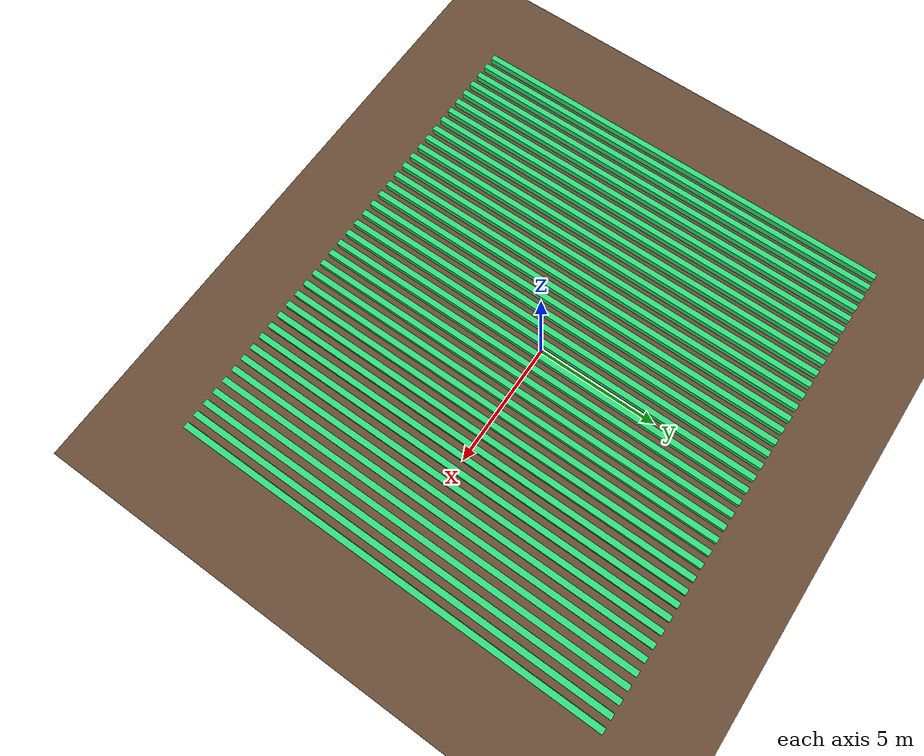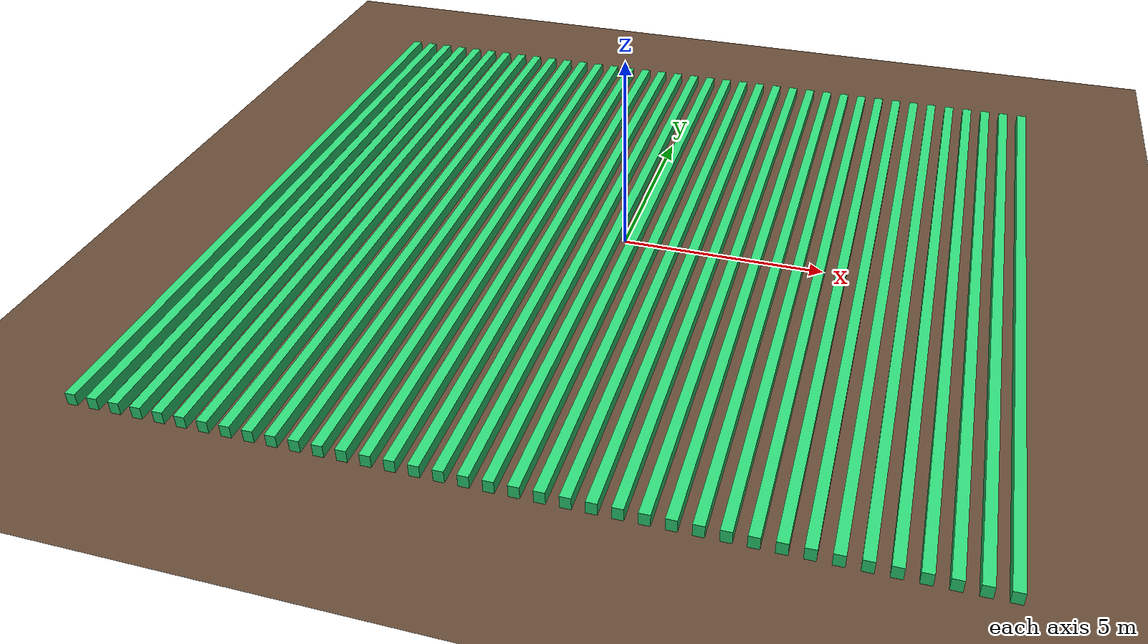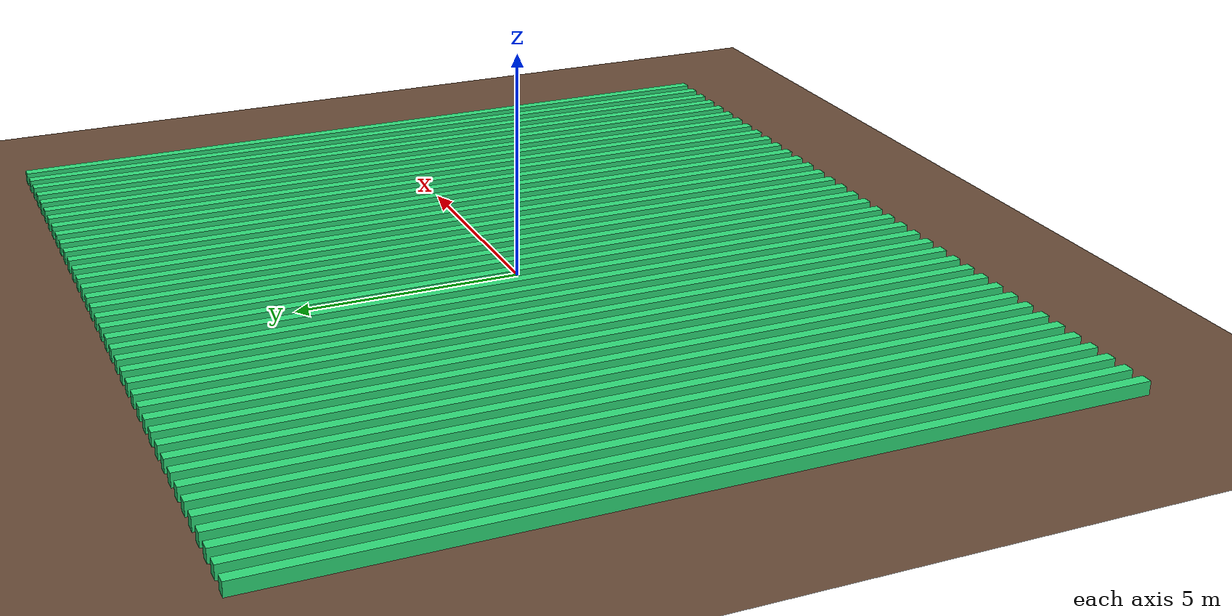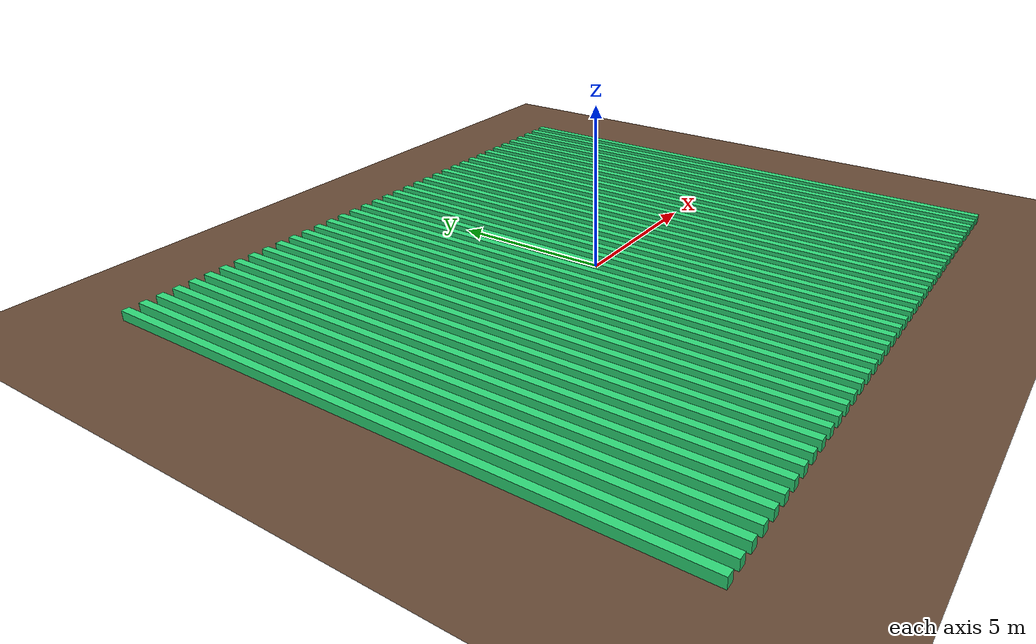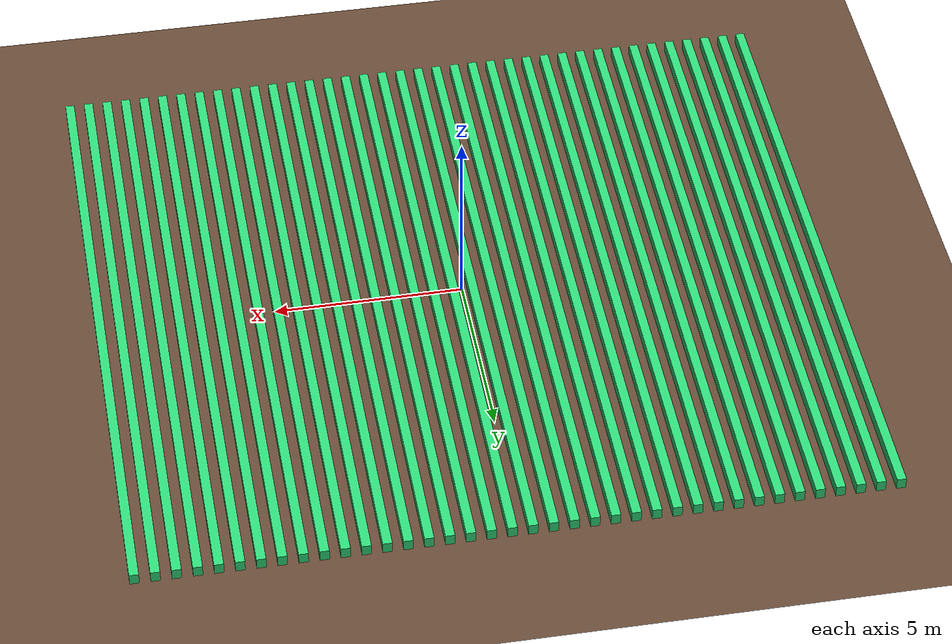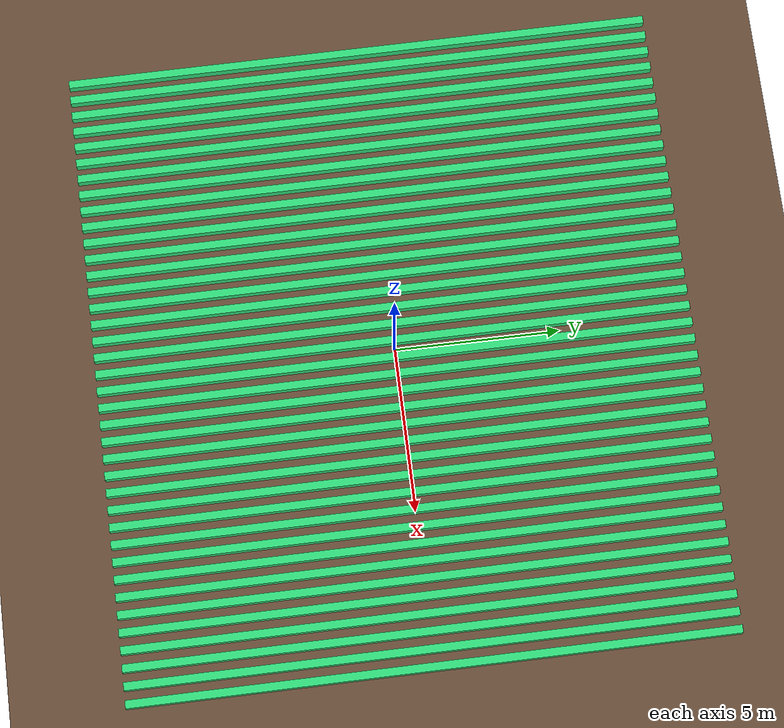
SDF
<sdf version="1.6">
 <world name="small_field">
  <light name="sun" type="directional">
   <pose>0 0 10 0 0 0</pose>
   <diffuse>0.8 0.8 0.8 1</diffuse>
   <specular>0.2 0.2 0.2 1</specular>
   <attenuation>
    <range>1000</range>
    <constant>0.9</constant>
    <linear>0.01</linear>
    <quadratic>0.001</quadratic>
   </attenuation>
   <direction>-0.5 0.1 -0.9</direction>
  </light>
  <gravity>0 0 -9.8</gravity>
  <magnetic_field>6e-06 2.3e-05 -4.2e-05</magnetic_field>
  <atmosphere type="adiabatic"/>
  <physics name="default_physics" default="0" type="ode">
   <max_step_size>0.001</max_step_size>
   <real_time_factor>1</real_time_factor>
   <real_time_update_rate>1000</real_time_update_rate>
  </physics>
  <scene><ambient>0.4 0.4 0.4 1</ambient><background>0.7 0.7 0.7 1</background><shadows>1</shadows></scene>
  <spherical_coordinates>
   <surface_model>EARTH_WGS84</surface_model>
   <latitude_deg>0</latitude_deg>
   <longitude_deg>0</longitude_deg>
   <elevation>0</elevation>
   <heading_deg>0</heading_deg>
  </spherical_coordinates>
  <model name="ground_plane">
   <static>1</static>
   <link name="ground_plane">
    <collision name="collision">
     <geometry><plane><normal>0 0 1</normal><size>20 30</size></plane></geometry>
     <surface><friction><ode><mu>100</mu><mu2>50</mu2></ode></friction></surface>
    </collision>
    <visual name="visual">
     <cast_shadows>0</cast_shadows>
     <geometry><plane><normal>0 0 1</normal><size>20 30</size></plane></geometry>
     <material>
      <ambient>0.40 0.29 0.21 1.00</ambient>
      <diffuse>0.40 0.29 0.21 1.00</diffuse>
      <specular>0.01 0.01 0.01 1</specular>
      <emissive>0 0 0 1</emissive>
     </material>
    </visual>
   </link>
  </model>
  <model name="crop1">
   <pose>-9.62 0.00 0.15 0.00 0.00 0.00</pose>
   <link name="crop_line">
    <visual name="visual">
     <geometry><box><size>0.24 18.00 0.30</size></box></geometry>
     <material>
      <ambient>0.13 0.60 0.33 1.00</ambient>
      <diffuse>0.18 0.85 0.47 1.00</diffuse>
      <specular>0.01 0.01 0.01 1</specular>
      <emissive>0 0 0 1</emissive>
     </material>
    </visual>
    <collision name="collision">
     <geometry><box><size>0.24 18.00 0.30</size></box></geometry>
     <surface><contact><collide_without_contact>true</collide_without_contact></contact></surface>
    </collision>
   </link>
   <static>1</static>
  </model>
  <model name="crop2">
   <pose>-9.10 0.00 0.15 0.00 0.00 0.00</pose>
   <link name="crop_line">
    <visual name="visual">
     <geometry><box><size>0.24 18.00 0.30</size></box></geometry>
     <material>
      <ambient>0.13 0.60 0.33 1.00</ambient>
      <diffuse>0.18 0.85 0.47 1.00</diffuse>
      <specular>0.01 0.01 0.01 1</specular>
      <emissive>0 0 0 1</emissive>
     </material>
    </visual>
    <collision name="collision">
     <geometry><box><size>0.24 18.00 0.30</size></box></geometry>
     <surface><contact><collide_without_contact>true</collide_without_contact></contact></surface>
    </collision>
   </link>
   <static>1</static>
  </model>
  <model name="crop3">
   <pose>-8.58 0.00 0.15 0.00 0.00 0.00</pose>
   <link name="crop_line">
    <visual name="visual">
     <geometry><box><size>0.24 18.00 0.30</size></box></geometry>
     <material>
      <ambient>0.13 0.60 0.33 1.00</ambient>
      <diffuse>0.18 0.85 0.47 1.00</diffuse>
      <specular>0.01 0.01 0.01 1</specular>
      <emissive>0 0 0 1</emissive>
     </material>
    </visual>
    <collision name="collision">
     <geometry><box><size>0.24 18.00 0.30</size></box></geometry>
     <surface><contact><collide_without_contact>true</collide_without_contact></contact></surface>
    </collision>
   </link>
   <static>1</static>
  </model>
  <model name="crop4">
   <pose>-8.06 0.00 0.15 0.00 0.00 0.00</pose>
   <link name="crop_line">
    <visual name="visual">
     <geometry><box><size>0.24 18.00 0.30</size></box></geometry>
     <material>
      <ambient>0.13 0.60 0.33 1.00</ambient>
      <diffuse>0.18 0.85 0.47 1.00</diffuse>
      <specular>0.01 0.01 0.01 1</specular>
      <emissive>0 0 0 1</emissive>
     </material>
    </visual>
    <collision name="collision">
     <geometry><box><size>0.24 18.00 0.30</size></box></geometry>
     <surface><contact><collide_without_contact>true</collide_without_contact></contact></surface>
    </collision>
   </link>
   <static>1</static>
  </model>
  <model name="crop5">
   <pose>-7.54 0.00 0.15 0.00 0.00 0.00</pose>
   <link name="crop_line">
    <visual name="visual">
     <geometry><box><size>0.24 18.00 0.30</size></box></geometry>
     <material>
      <ambient>0.13 0.60 0.33 1.00</ambient>
      <diffuse>0.18 0.85 0.47 1.00</diffuse>
      <specular>0.01 0.01 0.01 1</specular>
      <emissive>0 0 0 1</emissive>
     </material>
    </visual>
    <collision name="collision">
     <geometry><box><size>0.24 18.00 0.30</size></box></geometry>
     <surface><contact><collide_without_contact>true</collide_without_contact></contact></surface>
    </collision>
   </link>
   <static>1</static>
  </model>
  <model name="crop6">
   <pose>-7.02 0.00 0.15 0.00 0.00 0.00</pose>
   <link name="crop_line">
    <visual name="visual">
     <geometry><box><size>0.24 18.00 0.30</size></box></geometry>
     <material>
      <ambient>0.13 0.60 0.33 1.00</ambient>
      <diffuse>0.18 0.85 0.47 1.00</diffuse>
      <specular>0.01 0.01 0.01 1</specular>
      <emissive>0 0 0 1</emissive>
     </material>
    </visual>
    <collision name="collision">
     <geometry><box><size>0.24 18.00 0.30</size></box></geometry>
     <surface><contact><collide_without_contact>true</collide_without_contact></contact></surface>
    </collision>
   </link>
   <static>1</static>
  </model>
  <model name="crop7">
   <pose>-6.50 0.00 0.15 0.00 0.00 0.00</pose>
   <link name="crop_line">
    <visual name="visual">
     <geometry><box><size>0.24 18.00 0.30</size></box></geometry>
     <material>
      <ambient>0.13 0.60 0.33 1.00</ambient>
      <diffuse>0.18 0.85 0.47 1.00</diffuse>
      <specular>0.01 0.01 0.01 1</specular>
      <emissive>0 0 0 1</emissive>
     </material>
    </visual>
    <collision name="collision">
     <geometry><box><size>0.24 18.00 0.30</size></box></geometry>
     <surface><contact><collide_without_contact>true</collide_without_contact></contact></surface>
    </collision>
   </link>
   <static>1</static>
  </model>
  <model name="crop8">
   <pose>-5.98 0.00 0.15 0.00 0.00 0.00</pose>
   <link name="crop_line">
    <visual name="visual">
     <geometry><box><size>0.24 18.00 0.30</size></box></geometry>
     <material>
      <ambient>0.13 0.60 0.33 1.00</ambient>
      <diffuse>0.18 0.85 0.47 1.00</diffuse>
      <specular>0.01 0.01 0.01 1</specular>
      <emissive>0 0 0 1</emissive>
     </material>
    </visual>
    <collision name="collision">
     <geometry><box><size>0.24 18.00 0.30</size></box></geometry>
     <surface><contact><collide_without_contact>true</collide_without_contact></contact></surface>
    </collision>
   </link>
   <static>1</static>
  </model>
  <model name="crop9">
   <pose>-5.46 0.00 0.15 0.00 0.00 0.00</pose>
   <link name="crop_line">
    <visual name="visual">
     <geometry><box><size>0.24 18.00 0.30</size></box></geometry>
     <material>
      <ambient>0.13 0.60 0.33 1.00</ambient>
      <diffuse>0.18 0.85 0.47 1.00</diffuse>
      <specular>0.01 0.01 0.01 1</specular>
      <emissive>0 0 0 1</emissive>
     </material>
    </visual>
    <collision name="collision">
     <geometry><box><size>0.24 18.00 0.30</size></box></geometry>
     <surface><contact><collide_without_contact>true</collide_without_contact></contact></surface>
    </collision>
   </link>
   <static>1</static>
  </model>
  <model name="crop10">
   <pose>-4.94 0.00 0.15 0.00 0.00 0.00</pose>
   <link name="crop_line">
    <visual name="visual">
     <geometry><box><size>0.24 18.00 0.30</size></box></geometry>
     <material>
      <ambient>0.13 0.60 0.33 1.00</ambient>
      <diffuse>0.18 0.85 0.47 1.00</diffuse>
      <specular>0.01 0.01 0.01 1</specular>
      <emissive>0 0 0 1</emissive>
     </material>
    </visual>
    <collision name="collision">
     <geometry><box><size>0.24 18.00 0.30</size></box></geometry>
     <surface><contact><collide_without_contact>true</collide_without_contact></contact></surface>
    </collision>
   </link>
   <static>1</static>
  </model>
  <model name="crop11">
   <pose>-4.42 0.00 0.15 0.00 0.00 0.00</pose>
   <link name="crop_line">
    <visual name="visual">
     <geometry><box><size>0.24 18.00 0.30</size></box></geometry>
     <material>
      <ambient>0.13 0.60 0.33 1.00</ambient>
      <diffuse>0.18 0.85 0.47 1.00</diffuse>
      <specular>0.01 0.01 0.01 1</specular>
      <emissive>0 0 0 1</emissive>
     </material>
    </visual>
    <collision name="collision">
     <geometry><box><size>0.24 18.00 0.30</size></box></geometry>
     <surface><contact><collide_without_contact>true</collide_without_contact></contact></surface>
    </collision>
   </link>
   <static>1</static>
  </model>
  <model name="crop12">
   <pose>-3.90 0.00 0.15 0.00 0.00 0.00</pose>
   <link name="crop_line">
    <visual name="visual">
     <geometry><box><size>0.24 18.00 0.30</size></box></geometry>
     <material>
      <ambient>0.13 0.60 0.33 1.00</ambient>
      <diffuse>0.18 0.85 0.47 1.00</diffuse>
      <specular>0.01 0.01 0.01 1</specular>
      <emissive>0 0 0 1</emissive>
     </material>
    </visual>
    <collision name="collision">
     <geometry><box><size>0.24 18.00 0.30</size></box></geometry>
     <surface><contact><collide_without_contact>true</collide_without_contact></contact></surface>
    </collision>
   </link>
   <static>1</static>
  </model>
  <model name="crop13">
   <pose>-3.38 0.00 0.15 0.00 0.00 0.00</pose>
   <link name="crop_line">
    <visual name="visual">
     <geometry><box><size>0.24 18.00 0.30</size></box></geometry>
     <material>
      <ambient>0.13 0.60 0.33 1.00</ambient>
      <diffuse>0.18 0.85 0.47 1.00</diffuse>
      <specular>0.01 0.01 0.01 1</specular>
      <emissive>0 0 0 1</emissive>
     </material>
    </visual>
    <collision name="collision">
     <geometry><box><size>0.24 18.00 0.30</size></box></geometry>
     <surface><contact><collide_without_contact>true</collide_without_contact></contact></surface>
    </collision>
   </link>
   <static>1</static>
  </model>
  <model name="crop14">
   <pose>-2.86 0.00 0.15 0.00 0.00 0.00</pose>
   <link name="crop_line">
    <visual name="visual">
     <geometry><box><size>0.24 18.00 0.30</size></box></geometry>
     <material>
      <ambient>0.13 0.60 0.33 1.00</ambient>
      <diffuse>0.18 0.85 0.47 1.00</diffuse>
      <specular>0.01 0.01 0.01 1</specular>
      <emissive>0 0 0 1</emissive>
     </material>
    </visual>
    <collision name="collision">
     <geometry><box><size>0.24 18.00 0.30</size></box></geometry>
     <surface><contact><collide_without_contact>true</collide_without_contact></contact></surface>
    </collision>
   </link>
   <static>1</static>
  </model>
  <model name="crop15">
   <pose>-2.34 0.00 0.15 0.00 0.00 0.00</pose>
   <link name="crop_line">
    <visual name="visual">
     <geometry><box><size>0.24 18.00 0.30</size></box></geometry>
     <material>
      <ambient>0.13 0.60 0.33 1.00</ambient>
      <diffuse>0.18 0.85 0.47 1.00</diffuse>
      <specular>0.01 0.01 0.01 1</specular>
      <emissive>0 0 0 1</emissive>
     </material>
    </visual>
    <collision name="collision">
     <geometry><box><size>0.24 18.00 0.30</size></box></geometry>
     <surface><contact><collide_without_contact>true</collide_without_contact></contact></surface>
    </collision>
   </link>
   <static>1</static>
  </model>
  <model name="crop16">
   <pose>-1.82 0.00 0.15 0.00 0.00 0.00</pose>
   <link name="crop_line">
    <visual name="visual">
     <geometry><box><size>0.24 18.00 0.30</size></box></geometry>
     <material>
      <ambient>0.13 0.60 0.33 1.00</ambient>
      <diffuse>0.18 0.85 0.47 1.00</diffuse>
      <specular>0.01 0.01 0.01 1</specular>
      <emissive>0 0 0 1</emissive>
     </material>
    </visual>
    <collision name="collision">
     <geometry><box><size>0.24 18.00 0.30</size></box></geometry>
     <surface><contact><collide_without_contact>true</collide_without_contact></contact></surface>
    </collision>
   </link>
   <static>1</static>
  </model>
  <model name="crop17">
   <pose>-1.30 0.00 0.15 0.00 0.00 0.00</pose>
   <link name="crop_line">
    <visual name="visual">
     <geometry><box><size>0.24 18.00 0.30</size></box></geometry>
     <material>
      <ambient>0.13 0.60 0.33 1.00</ambient>
      <diffuse>0.18 0.85 0.47 1.00</diffuse>
      <specular>0.01 0.01 0.01 1</specular>
      <emissive>0 0 0 1</emissive>
     </material>
    </visual>
    <collision name="collision">
     <geometry><box><size>0.24 18.00 0.30</size></box></geometry>
     <surface><contact><collide_without_contact>true</collide_without_contact></contact></surface>
    </collision>
   </link>
   <static>1</static>
  </model>
  <model name="crop18">
   <pose>-0.78 0.00 0.15 0.00 0.00 0.00</pose>
   <link name="crop_line">
    <visual name="visual">
     <geometry><box><size>0.24 18.00 0.30</size></box></geometry>
     <material>
      <ambient>0.13 0.60 0.33 1.00</ambient>
      <diffuse>0.18 0.85 0.47 1.00</diffuse>
      <specular>0.01 0.01 0.01 1</specular>
      <emissive>0 0 0 1</emissive>
     </material>
    </visual>
    <collision name="collision">
     <geometry><box><size>0.24 18.00 0.30</size></box></geometry>
     <surface><contact><collide_without_contact>true</collide_without_contact></contact></surface>
    </collision>
   </link>
   <static>1</static>
  </model>
  <model name="crop19">
   <pose>-0.26 0.00 0.15 0.00 0.00 0.00</pose>
   <link name="crop_line">
    <visual name="visual">
     <geometry><box><size>0.24 18.00 0.30</size></box></geometry>
     <material>
      <ambient>0.13 0.60 0.33 1.00</ambient>
      <diffuse>0.18 0.85 0.47 1.00</diffuse>
      <specular>0.01 0.01 0.01 1</specular>
      <emissive>0 0 0 1</emissive>
     </material>
    </visual>
    <collision name="collision">
     <geometry><box><size>0.24 18.00 0.30</size></box></geometry>
     <surface><contact><collide_without_contact>true</collide_without_contact></contact></surface>
    </collision>
   </link>
   <static>1</static>
  </model>
  <model name="crop20">
   <pose>0.26 0.00 0.15 0.00 0.00 0.00</pose>
   <link name="crop_line">
    <visual name="visual">
     <geometry><box><size>0.24 18.00 0.30</size></box></geometry>
     <material>
      <ambient>0.13 0.60 0.33 1.00</ambient>
      <diffuse>0.18 0.85 0.47 1.00</diffuse>
      <specular>0.01 0.01 0.01 1</specular>
      <emissive>0 0 0 1</emissive>
     </material>
    </visual>
    <collision name="collision">
     <geometry><box><size>0.24 18.00 0.30</size></box></geometry>
     <surface><contact><collide_without_contact>true</collide_without_contact></contact></surface>
    </collision>
   </link>
   <static>1</static>
  </model>
  <model name="crop21">
   <pose>0.78 0.00 0.15 0.00 0.00 0.00</pose>
   <link name="crop_line">
    <visual name="visual">
     <geometry><box><size>0.24 18.00 0.30</size></box></geometry>
     <material>
      <ambient>0.13 0.60 0.33 1.00</ambient>
      <diffuse>0.18 0.85 0.47 1.00</diffuse>
      <specular>0.01 0.01 0.01 1</specular>
      <emissive>0 0 0 1</emissive>
     </material>
    </visual>
    <collision name="collision">
     <geometry><box><size>0.24 18.00 0.30</size></box></geometry>
     <surface><contact><collide_without_contact>true</collide_without_contact></contact></surface>
    </collision>
   </link>
   <static>1</static>
  </model>
  <model name="crop22">
   <pose>1.30 0.00 0.15 0.00 0.00 0.00</pose>
   <link name="crop_line">
    <visual name="visual">
     <geometry><box><size>0.24 18.00 0.30</size></box></geometry>
     <material>
      <ambient>0.13 0.60 0.33 1.00</ambient>
      <diffuse>0.18 0.85 0.47 1.00</diffuse>
      <specular>0.01 0.01 0.01 1</specular>
      <emissive>0 0 0 1</emissive>
     </material>
    </visual>
    <collision name="collision">
     <geometry><box><size>0.24 18.00 0.30</size></box></geometry>
     <surface><contact><collide_without_contact>true</collide_without_contact></contact></surface>
    </collision>
   </link>
   <static>1</static>
  </model>
  <model name="crop23">
   <pose>1.82 0.00 0.15 0.00 0.00 0.00</pose>
   <link name="crop_line">
    <visual name="visual">
     <geometry><box><size>0.24 18.00 0.30</size></box></geometry>
     <material>
      <ambient>0.13 0.60 0.33 1.00</ambient>
      <diffuse>0.18 0.85 0.47 1.00</diffuse>
      <specular>0.01 0.01 0.01 1</specular>
      <emissive>0 0 0 1</emissive>
     </material>
    </visual>
    <collision name="collision">
     <geometry><box><size>0.24 18.00 0.30</size></box></geometry>
     <surface><contact><collide_without_contact>true</collide_without_contact></contact></surface>
    </collision>
   </link>
   <static>1</static>
  </model>
  <model name="crop24">
   <pose>2.34 0.00 0.15 0.00 0.00 0.00</pose>
   <link name="crop_line">
    <visual name="visual">
     <geometry><box><size>0.24 18.00 0.30</size></box></geometry>
     <material>
      <ambient>0.13 0.60 0.33 1.00</ambient>
      <diffuse>0.18 0.85 0.47 1.00</diffuse>
      <specular>0.01 0.01 0.01 1</specular>
      <emissive>0 0 0 1</emissive>
     </material>
    </visual>
    <collision name="collision">
     <geometry><box><size>0.24 18.00 0.30</size></box></geometry>
     <surface><contact><collide_without_contact>true</collide_without_contact></contact></surface>
    </collision>
   </link>
   <static>1</static>
  </model>
  <model name="crop25">
   <pose>2.86 0.00 0.15 0.00 0.00 0.00</pose>
   <link name="crop_line">
    <visual name="visual">
     <geometry><box><size>0.24 18.00 0.30</size></box></geometry>
     <material>
      <ambient>0.13 0.60 0.33 1.00</ambient>
      <diffuse>0.18 0.85 0.47 1.00</diffuse>
      <specular>0.01 0.01 0.01 1</specular>
      <emissive>0 0 0 1</emissive>
     </material>
    </visual>
    <collision name="collision">
     <geometry><box><size>0.24 18.00 0.30</size></box></geometry>
     <surface><contact><collide_without_contact>true</collide_without_contact></contact></surface>
    </collision>
   </link>
   <static>1</static>
  </model>
  <model name="crop26">
   <pose>3.38 0.00 0.15 0.00 0.00 0.00</pose>
   <link name="crop_line">
    <visual name="visual">
     <geometry><box><size>0.24 18.00 0.30</size></box></geometry>
     <material>
      <ambient>0.13 0.60 0.33 1.00</ambient>
      <diffuse>0.18 0.85 0.47 1.00</diffuse>
      <specular>0.01 0.01 0.01 1</specular>
      <emissive>0 0 0 1</emissive>
     </material>
    </visual>
    <collision name="collision">
     <geometry><box><size>0.24 18.00 0.30</size></box></geometry>
     <surface><contact><collide_without_contact>true</collide_without_contact></contact></surface>
    </collision>
   </link>
   <static>1</static>
  </model>
  <model name="crop27">
   <pose>3.90 0.00 0.15 0.00 0.00 0.00</pose>
   <link name="crop_line">
    <visual name="visual">
     <geometry><box><size>0.24 18.00 0.30</size></box></geometry>
     <material>
      <ambient>0.13 0.60 0.33 1.00</ambient>
      <diffuse>0.18 0.85 0.47 1.00</diffuse>
      <specular>0.01 0.01 0.01 1</specular>
      <emissive>0 0 0 1</emissive>
     </material>
    </visual>
    <collision name="collision">
     <geometry><box><size>0.24 18.00 0.30</size></box></geometry>
     <surface><contact><collide_without_contact>true</collide_without_contact></contact></surface>
    </collision>
   </link>
   <static>1</static>
  </model>
  <model name="crop28">
   <pose>4.42 0.00 0.15 0.00 0.00 0.00</pose>
   <link name="crop_line">
    <visual name="visual">
     <geometry><box><size>0.24 18.00 0.30</size></box></geometry>
     <material>
      <ambient>0.13 0.60 0.33 1.00</ambient>
      <diffuse>0.18 0.85 0.47 1.00</diffuse>
      <specular>0.01 0.01 0.01 1</specular>
      <emissive>0 0 0 1</emissive>
     </material>
    </visual>
    <collision name="collision">
     <geometry><box><size>0.24 18.00 0.30</size></box></geometry>
     <surface><contact><collide_without_contact>true</collide_without_contact></contact></surface>
    </collision>
   </link>
   <static>1</static>
  </model>
  <model name="crop29">
   <pose>4.94 0.00 0.15 0.00 0.00 0.00</pose>
   <link name="crop_line">
    <visual name="visual">
     <geometry><box><size>0.24 18.00 0.30</size></box></geometry>
     <material>
      <ambient>0.13 0.60 0.33 1.00</ambient>
      <diffuse>0.18 0.85 0.47 1.00</diffuse>
      <specular>0.01 0.01 0.01 1</specular>
      <emissive>0 0 0 1</emissive>
     </material>
    </visual>
    <collision name="collision">
     <geometry><box><size>0.24 18.00 0.30</size></box></geometry>
     <surface><contact><collide_without_contact>true</collide_without_contact></contact></surface>
    </collision>
   </link>
   <static>1</static>
  </model>
  <model name="crop30">
   <pose>5.46 0.00 0.15 0.00 0.00 0.00</pose>
   <link name="crop_line">
    <visual name="visual">
     <geometry><box><size>0.24 18.00 0.30</size></box></geometry>
     <material>
      <ambient>0.13 0.60 0.33 1.00</ambient>
      <diffuse>0.18 0.85 0.47 1.00</diffuse>
      <specular>0.01 0.01 0.01 1</specular>
      <emissive>0 0 0 1</emissive>
     </material>
    </visual>
    <collision name="collision">
     <geometry><box><size>0.24 18.00 0.30</size></box></geometry>
     <surface><contact><collide_without_contact>true</collide_without_contact></contact></surface>
    </collision>
   </link>
   <static>1</static>
  </model>
  <model name="crop31">
   <pose>5.98 0.00 0.15 0.00 0.00 0.00</pose>
   <link name="crop_line">
    <visual name="visual">
     <geometry><box><size>0.24 18.00 0.30</size></box></geometry>
     <material>
      <ambient>0.13 0.60 0.33 1.00</ambient>
      <diffuse>0.18 0.85 0.47 1.00</diffuse>
      <specular>0.01 0.01 0.01 1</specular>
      <emissive>0 0 0 1</emissive>
     </material>
    </visual>
    <collision name="collision">
     <geometry><box><size>0.24 18.00 0.30</size></box></geometry>
     <surface><contact><collide_without_contact>true</collide_without_contact></contact></surface>
    </collision>
   </link>
   <static>1</static>
  </model>
  <model name="crop32">
   <pose>6.50 0.00 0.15 0.00 0.00 0.00</pose>
   <link name="crop_line">
    <visual name="visual">
     <geometry><box><size>0.24 18.00 0.30</size></box></geometry>
     <material>
      <ambient>0.13 0.60 0.33 1.00</ambient>
      <diffuse>0.18 0.85 0.47 1.00</diffuse>
      <specular>0.01 0.01 0.01 1</specular>
      <emissive>0 0 0 1</emissive>
     </material>
    </visual>
    <collision name="collision">
     <geometry><box><size>0.24 18.00 0.30</size></box></geometry>
     <surface><contact><collide_without_contact>true</collide_without_contact></contact></surface>
    </collision>
   </link>
   <static>1</static>
  </model>
  <model name="crop33">
   <pose>7.02 0.00 0.15 0.00 0.00 0.00</pose>
   <link name="crop_line">
    <visual name="visual">
     <geometry><box><size>0.24 18.00 0.30</size></box></geometry>
     <material>
      <ambient>0.13 0.60 0.33 1.00</ambient>
      <diffuse>0.18 0.85 0.47 1.00</diffuse>
      <specular>0.01 0.01 0.01 1</specular>
      <emissive>0 0 0 1</emissive>
     </material>
    </visual>
    <collision name="collision">
     <geometry><box><size>0.24 18.00 0.30</size></box></geometry>
     <surface><contact><collide_without_contact>true</collide_without_contact></contact></surface>
    </collision>
   </link>
   <static>1</static>
  </model>
  <model name="crop34">
   <pose>7.54 0.00 0.15 0.00 0.00 0.00</pose>
   <link name="crop_line">
    <visual name="visual">
     <geometry><box><size>0.24 18.00 0.30</size></box></geometry>
     <material>
      <ambient>0.13 0.60 0.33 1.00</ambient>
      <diffuse>0.18 0.85 0.47 1.00</diffuse>
      <specular>0.01 0.01 0.01 1</specular>
      <emissive>0 0 0 1</emissive>
     </material>
    </visual>
    <collision name="collision">
     <geometry><box><size>0.24 18.00 0.30</size></box></geometry>
     <surface><contact><collide_without_contact>true</collide_without_contact></contact></surface>
    </collision>
   </link>
   <static>1</static>
  </model>
  <model name="crop35">
   <pose>8.06 0.00 0.15 0.00 0.00 0.00</pose>
   <link name="crop_line">
    <visual name="visual">
     <geometry><box><size>0.24 18.00 0.30</size></box></geometry>
     <material>
      <ambient>0.13 0.60 0.33 1.00</ambient>
      <diffuse>0.18 0.85 0.47 1.00</diffuse>
      <specular>0.01 0.01 0.01 1</specular>
      <emissive>0 0 0 1</emissive>
     </material>
    </visual>
    <collision name="collision">
     <geometry><box><size>0.24 18.00 0.30</size></box></geometry>
     <surface><contact><collide_without_contact>true</collide_without_contact></contact></surface>
    </collision>
   </link>
   <static>1</static>
  </model>
  <model name="crop36">
   <pose>8.58 0.00 0.15 0.00 0.00 0.00</pose>
   <link name="crop_line">
    <visual name="visual">
     <geometry><box><size>0.24 18.00 0.30</size></box></geometry>
     <material>
      <ambient>0.13 0.60 0.33 1.00</ambient>
      <diffuse>0.18 0.85 0.47 1.00</diffuse>
      <specular>0.01 0.01 0.01 1</specular>
      <emissive>0 0 0 1</emissive>
     </material>
    </visual>
    <collision name="collision">
     <geometry><box><size>0.24 18.00 0.30</size></box></geometry>
     <surface><contact><collide_without_contact>true</collide_without_contact></contact></surface>
    </collision>
   </link>
   <static>1</static>
  </model>
  <model name="crop37">
   <pose>9.10 0.00 0.15 0.00 0.00 0.00</pose>
   <link name="crop_line">
    <visual name="visual">
     <geometry><box><size>0.24 18.00 0.30</size></box></geometry>
     <material>
      <ambient>0.13 0.60 0.33 1.00</ambient>
      <diffuse>0.18 0.85 0.47 1.00</diffuse>
      <specular>0.01 0.01 0.01 1</specular>
      <emissive>0 0 0 1</emissive>
     </material>
    </visual>
    <collision name="collision">
     <geometry><box><size>0.24 18.00 0.30</size></box></geometry>
     <surface><contact><collide_without_contact>true</collide_without_contact></contact></surface>
    </collision>
   </link>
   <static>1</static>
  </model>
  <model name="crop38">
   <pose>9.62 0.00 0.15 0.00 0.00 0.00</pose>
   <link name="crop_line">
    <visual name="visual">
     <geometry><box><size>0.24 18.00 0.30</size></box></geometry>
     <material>
      <ambient>0.13 0.60 0.33 1.00</ambient>
      <diffuse>0.18 0.85 0.47 1.00</diffuse>
      <specular>0.01 0.01 0.01 1</specular>
      <emissive>0 0 0 1</emissive>
     </material>
    </visual>
    <collision name="collision">
     <geometry><box><size>0.24 18.00 0.30</size></box></geometry>
     <surface><contact><collide_without_contact>true</collide_without_contact></contact></surface>
    </collision>
   </link>
   <static>1</static>
  </model>
 </world>
</sdf>
